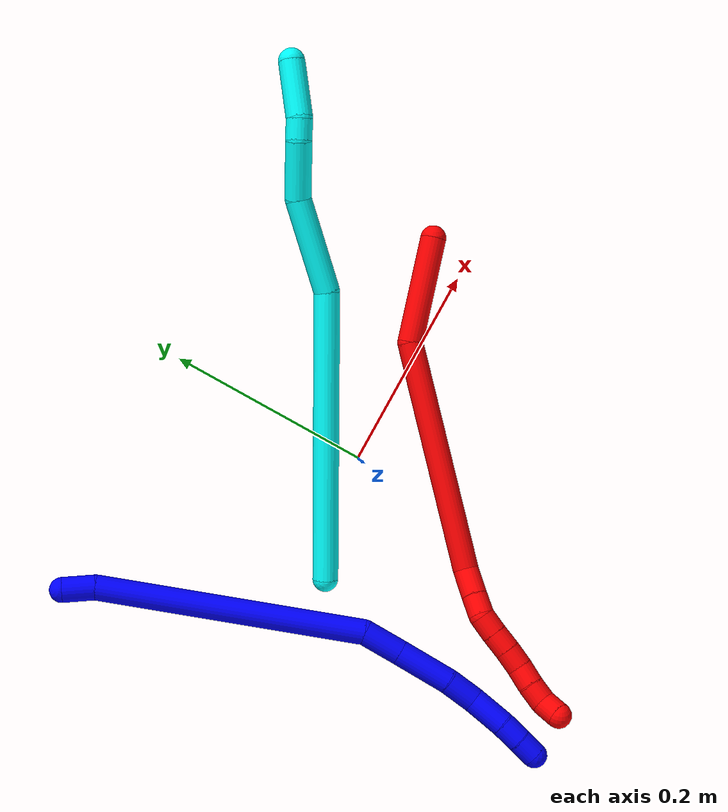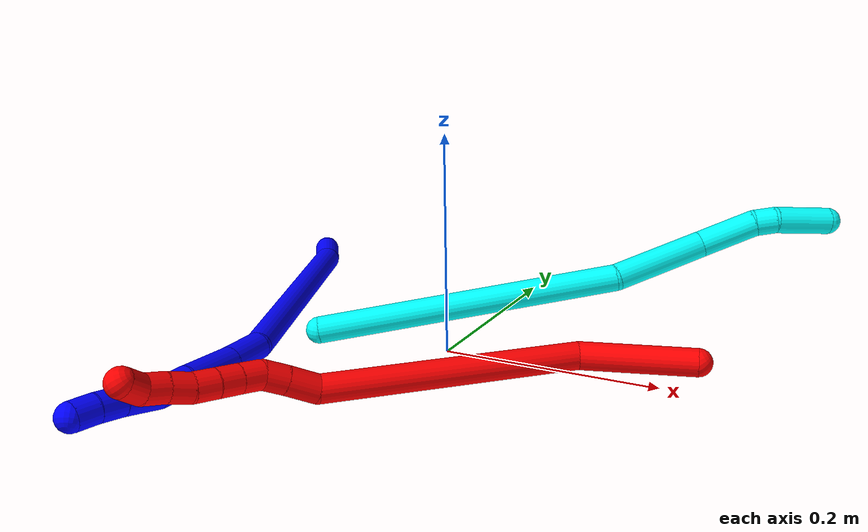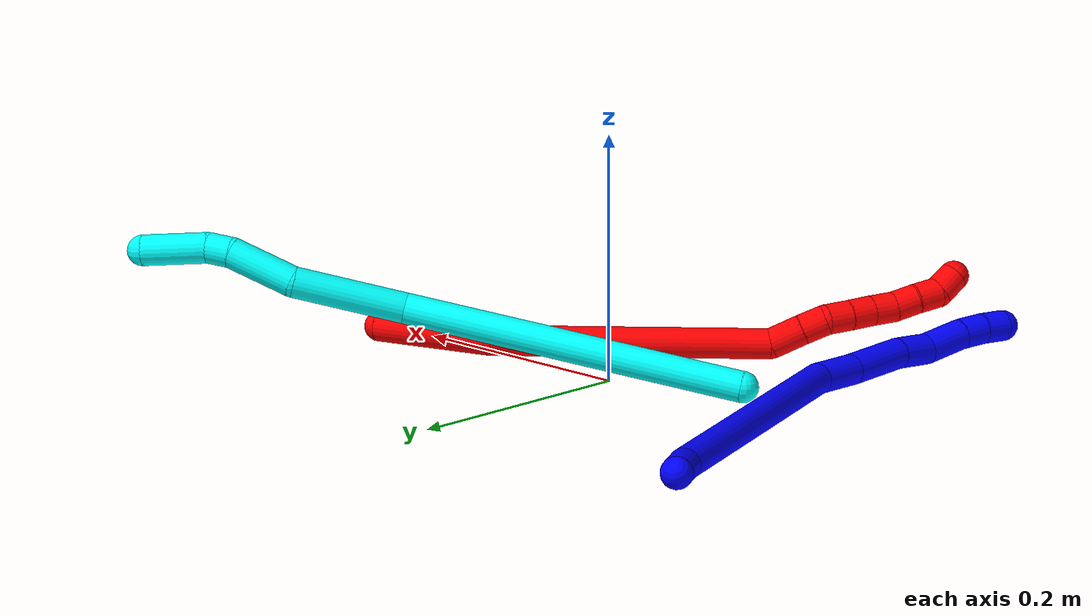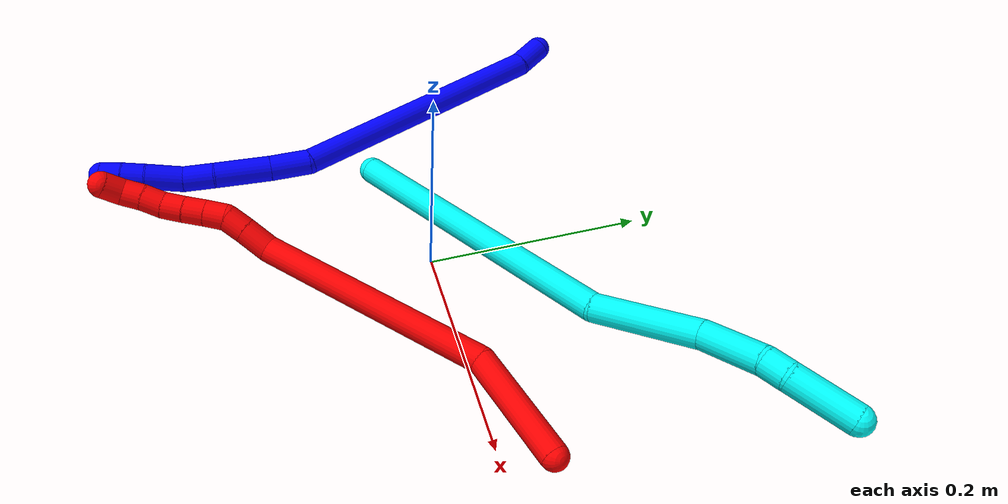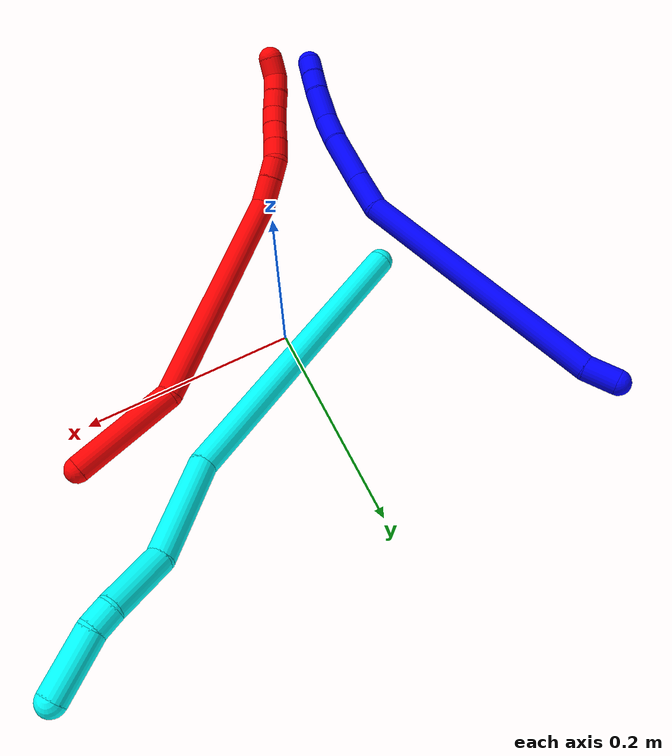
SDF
<sdf version="1.7">
 <world name="default">
  <plugin name="TubeGeneratorPlugin" filename="libtube_generator_plugin.so"/>
  <model name="photoneo_s_sensor">
   <static>1</static>
   <pose>0 0 2 1.57079 1.57079 3.14159</pose>
   <link name="link">
    <inertial><mass>0.1</mass></inertial>
    <sensor name="sensor" type="depth">
     <update_rate>30</update_rate>
     <camera>
      <horizontal_fov>1.22</horizontal_fov>
      <image><width>1920</width><height>1200</height><format>B8G8R8</format></image>
      <clip><near>0.1</near><far>4</far></clip>
      <depth_camera><output>points</output></depth_camera>
     </camera>
     <plugin name="camera_plugin" filename="libgazebo_ros_depth_camera.so">
      <baseline>0.2</baseline>
      <alwaysOn>1</alwaysOn>
      <updateRate>0.0</updateRate>
      <cameraName>camera_ir</cameraName>
      <imageTopicName>/camera/color/image_raw</imageTopicName>
      <cameraInfoTopicName>/camera/color/camera_info</cameraInfoTopicName>
      <depthImageTopicName>/camera/depth/image_raw</depthImageTopicName>
      <depthImageCameraInfoTopicName>/camera/depth/camera_info</depthImageCameraInfoTopicName>
      <pointCloudTopicName>/camera/depth/points</pointCloudTopicName>
      <frameName>fr_optical</frameName>
      <pointCloudCutoff>0.1</pointCloudCutoff>
      <pointCloudCutoffMax>2.0</pointCloudCutoffMax>
      <distortionK1>0</distortionK1>
      <distortionK2>0</distortionK2>
      <distortionK3>0</distortionK3>
      <distortionT1>0</distortionT1>
      <distortionT2>0</distortionT2>
      <CxPrime>0</CxPrime>
      <Cx>0</Cx>
      <Cy>0</Cy>
      <focalLength>0</focalLength>
      <hackBaseline>0</hackBaseline>
     </plugin>
    </sensor>
   </link>
  </model>
  <gravity>0 0 -9.8</gravity>
  <magnetic_field>6e-06 2.3e-05 -4.2e-05</magnetic_field>
  <atmosphere type="adiabatic"/>
  <physics name="default_physics" default="0" type="ode">
   <max_step_size>0.003</max_step_size>
   <real_time_factor>1</real_time_factor>
   <real_time_update_rate>1000</real_time_update_rate>
   <max_contacts>10000</max_contacts>
   <ode>
    <solver>
     <type>quick</type>
     <iters>100</iters>
     <sor>1.3</sor>
     <use_dynamic_moi_rescaling>0</use_dynamic_moi_rescaling>
    </solver>
    <constraints>
     <contact_max_correcting_vel>0</contact_max_correcting_vel>
     <contact_surface_layer>0.001</contact_surface_layer>
     <cfm>0</cfm>
     <erp>0.2</erp>
    </constraints>
   </ode>
  </physics>
  <scene><ambient>0.4 0.4 0.4 1</ambient><background>0.7 0.7 0.7 1</background><shadows>0</shadows></scene>
  <audio><device>default</device></audio>
  <spherical_coordinates>
   <surface_model>EARTH_WGS84</surface_model>
   <latitude_deg>0</latitude_deg>
   <longitude_deg>0</longitude_deg>
   <elevation>0</elevation>
   <heading_deg>0</heading_deg>
  </spherical_coordinates>
  <model name="bin">
   <static>1</static>
   <link name="bottom">
    <collision name="collision-bottom">
     <pose>0 0 -0.01 0 -0 0</pose>
     <geometry><box><size>0.8 0.6 0.02</size></box></geometry>
     <surface>
      <friction><ode><mu>100</mu><mu2>100</mu2></ode></friction>
      <contact><collide_bitmask>65535</collide_bitmask></contact>
     </surface>
    </collision>
   </link>
   <link name="west_wall">
    <collision name="collision-west_wall">
     <pose>-0.41 0 0.1 0 -0 0</pose>
     <geometry><box><size>0.02 0.6 0.2</size></box></geometry>
     <surface>
      <friction><ode><mu>100</mu><mu2>100</mu2></ode></friction>
      <contact><collide_bitmask>65535</collide_bitmask></contact>
     </surface>
    </collision>
   </link>
   <link name="east_wall">
    <collision name="collision-east_wall">
     <pose>0.41 0 0.1 0 -0 0</pose>
     <geometry><box><size>0.02 0.6 0.2</size></box></geometry>
     <surface>
      <friction><ode><mu>100</mu><mu2>100</mu2></ode></friction>
      <contact><collide_bitmask>65535</collide_bitmask></contact>
     </surface>
    </collision>
   </link>
   <link name="south_wall">
    <collision name="collision-south_wall">
     <pose>0 -0.31 0.1 0 -0 0</pose>
     <geometry><box><size>0.8 0.02 0.2</size></box></geometry>
     <surface>
      <friction><ode><mu>100</mu><mu2>100</mu2></ode></friction>
      <contact><collide_bitmask>65535</collide_bitmask></contact>
     </surface>
    </collision>
   </link>
   <link name="north_wall">
    <collision name="collision-north_wall">
     <pose>0 0.31 0.1 0 -0 0</pose>
     <geometry><box><size>0.8 0.02 0.2</size></box></geometry>
     <surface>
      <friction><ode><mu>100</mu><mu2>100</mu2></ode></friction>
      <contact><collide_bitmask>65535</collide_bitmask></contact>
     </surface>
    </collision>
   </link>
  </model>
  <model name="1">
   <static>0</static>
   <link name="1">
    <collision name="collision-cylinder-e_1_1_4">
     <pose>0.000669 -0.011266 0.011648 0.76873 0.041241 0.016683</pose>
     <geometry><cylinder><radius>0.0125</radius><length>0.032438</length></cylinder></geometry>
     <surface>
      <friction><ode><mu>1.16</mu><mu2>1.16</mu2><slip1>0</slip1><slip2>0</slip2></ode></friction>
      <contact><ode><kp>1e+06</kp><kd>1</kd><max_vel>0</max_vel><min_depth>0.001</min_depth></ode></contact>
     </surface>
    </collision>
    <visual name="visual-cylinder-e_1_1_4">
     <pose>0.000669 -0.011266 0.011648 0.76873 0.041241 0.016683</pose>
     <geometry><cylinder><radius>0.0125</radius><length>0.032438</length></cylinder></geometry>
     <material><ambient>0 0 1 1</ambient></material>
    </visual>
    <collision name="collision-cylinder-e_2_4_5">
     <pose>0.038558 -0.113461 0.111843 0.79867 0.285265 0.12106</pose>
     <geometry><cylinder><radius>0.0125</radius><length>0.264529</length></cylinder></geometry>
     <surface>
      <friction><ode><mu>1.16</mu><mu2>1.16</mu2><slip1>0</slip1><slip2>0</slip2></ode></friction>
      <contact><ode><kp>1e+06</kp><kd>1</kd><max_vel>0</max_vel><min_depth>0.001</min_depth></ode></contact>
     </surface>
    </collision>
    <visual name="visual-cylinder-e_2_4_5">
     <pose>0.038558 -0.113461 0.111843 0.79867 0.285265 0.12106</pose>
     <geometry><cylinder><radius>0.0125</radius><length>0.264529</length></cylinder></geometry>
     <material><ambient>0 0 1 1</ambient></material>
    </visual>
    <collision name="collision-cylinder-e_3_5_6">
     <pose>0.087437 -0.214639 0.212454 0.704225 0.634783 0.240233</pose>
     <geometry><cylinder><radius>0.0125</radius><length>0.039318</length></cylinder></geometry>
     <surface>
      <friction><ode><mu>1.16</mu><mu2>1.16</mu2><slip1>0</slip1><slip2>0</slip2></ode></friction>
      <contact><ode><kp>1e+06</kp><kd>1</kd><max_vel>0</max_vel><min_depth>0.001</min_depth></ode></contact>
     </surface>
    </collision>
    <visual name="visual-cylinder-e_3_5_6">
     <pose>0.087437 -0.214639 0.212454 0.704225 0.634783 0.240233</pose>
     <geometry><cylinder><radius>0.0125</radius><length>0.039318</length></cylinder></geometry>
     <material><ambient>0 0 1 1</ambient></material>
    </visual>
    <collision name="collision-cylinder-e_4_6_7">
     <pose>0.115733 -0.240117 0.240087 0.774355 0.652354 0.274127</pose>
     <geometry><cylinder><radius>0.0125</radius><length>0.054815</length></cylinder></geometry>
     <surface>
      <friction><ode><mu>1.16</mu><mu2>1.16</mu2><slip1>0</slip1><slip2>0</slip2></ode></friction>
      <contact><ode><kp>1e+06</kp><kd>1</kd><max_vel>0</max_vel><min_depth>0.001</min_depth></ode></contact>
     </surface>
    </collision>
    <visual name="visual-cylinder-e_4_6_7">
     <pose>0.115733 -0.240117 0.240087 0.774355 0.652354 0.274127</pose>
     <geometry><cylinder><radius>0.0125</radius><length>0.054815</length></cylinder></geometry>
     <material><ambient>0 0 1 1</ambient></material>
    </visual>
    <collision name="collision-cylinder-e_5_7_8">
     <pose>0.142489 -0.261797 0.26489 0.609808 0.731889 0.240043</pose>
     <geometry><cylinder><radius>0.0125</radius><length>0.03028</length></cylinder></geometry>
     <surface>
      <friction><ode><mu>1.16</mu><mu2>1.16</mu2><slip1>0</slip1><slip2>0</slip2></ode></friction>
      <contact><ode><kp>1e+06</kp><kd>1</kd><max_vel>0</max_vel><min_depth>0.001</min_depth></ode></contact>
     </surface>
    </collision>
    <visual name="visual-cylinder-e_5_7_8">
     <pose>0.142489 -0.261797 0.26489 0.609808 0.731889 0.240043</pose>
     <geometry><cylinder><radius>0.0125</radius><length>0.03028</length></cylinder></geometry>
     <material><ambient>0 0 1 1</ambient></material>
    </visual>
    <collision name="collision-cylinder-e_6_8_9">
     <pose>0.166015 -0.278048 0.281718 0.911488 0.824445 0.422281</pose>
     <geometry><cylinder><radius>0.0125</radius><length>0.036527</length></cylinder></geometry>
     <surface>
      <friction><ode><mu>1.16</mu><mu2>1.16</mu2><slip1>0</slip1><slip2>0</slip2></ode></friction>
      <contact><ode><kp>1e+06</kp><kd>1</kd><max_vel>0</max_vel><min_depth>0.001</min_depth></ode></contact>
     </surface>
    </collision>
    <visual name="visual-cylinder-e_6_8_9">
     <pose>0.166015 -0.278048 0.281718 0.911488 0.824445 0.422281</pose>
     <geometry><cylinder><radius>0.0125</radius><length>0.036527</length></cylinder></geometry>
     <material><ambient>0 0 1 1</ambient></material>
    </visual>
    <collision name="collision-cylinder-e_7_9_10">
     <pose>0.187804 -0.292499 0.294351 0.745382 0.885248 0.366467</pose>
     <geometry><cylinder><radius>0.0125</radius><length>0.021653</length></cylinder></geometry>
     <surface>
      <friction><ode><mu>1.16</mu><mu2>1.16</mu2><slip1>0</slip1><slip2>0</slip2></ode></friction>
      <contact><ode><kp>1e+06</kp><kd>1</kd><max_vel>0</max_vel><min_depth>0.001</min_depth></ode></contact>
     </surface>
    </collision>
    <visual name="visual-cylinder-e_7_9_10">
     <pose>0.187804 -0.292499 0.294351 0.745382 0.885248 0.366467</pose>
     <geometry><cylinder><radius>0.0125</radius><length>0.021653</length></cylinder></geometry>
     <material><ambient>0 0 1 1</ambient></material>
    </visual>
    <collision name="collision-cylinder-e_8_10_2">
     <pose>0.204084 -0.300819 0.304732 0.601983 0.88351 0.291532</pose>
     <geometry><cylinder><radius>0.0125</radius><length>0.020439</length></cylinder></geometry>
     <surface>
      <friction><ode><mu>1.16</mu><mu2>1.16</mu2><slip1>0</slip1><slip2>0</slip2></ode></friction>
      <contact><ode><kp>1e+06</kp><kd>1</kd><max_vel>0</max_vel><min_depth>0.001</min_depth></ode></contact>
     </surface>
    </collision>
    <visual name="visual-cylinder-e_8_10_2">
     <pose>0.204084 -0.300819 0.304732 0.601983 0.88351 0.291532</pose>
     <geometry><cylinder><radius>0.0125</radius><length>0.020439</length></cylinder></geometry>
     <material><ambient>0 0 1 1</ambient></material>
    </visual>
    <collision name="collision-sphere-2">
     <pose>0.211983 -0.304491 0.310076 0 -0 0</pose>
     <geometry><sphere><radius>0.0125</radius></sphere></geometry>
     <surface>
      <friction><ode><mu>1.16</mu><mu2>1.16</mu2><slip1>0</slip1><slip2>0</slip2></ode></friction>
      <contact><ode><kp>1e+06</kp><kd>1</kd><max_vel>0</max_vel><min_depth>0.001</min_depth></ode></contact>
     </surface>
    </collision>
    <visual name="visual-sphere-2">
     <pose>0.211983 -0.304491 0.310076 0 -0 0</pose>
     <geometry><sphere><radius>0.0125</radius></sphere></geometry>
     <material><ambient>0 0 1 1</ambient></material>
    </visual>
    <collision name="collision-sphere-10">
     <pose>0.196185 -0.297148 0.299388 0 -0 0</pose>
     <geometry><sphere><radius>0.0125</radius></sphere></geometry>
     <surface>
      <friction><ode><mu>1.16</mu><mu2>1.16</mu2><slip1>0</slip1><slip2>0</slip2></ode></friction>
      <contact><ode><kp>1e+06</kp><kd>1</kd><max_vel>0</max_vel><min_depth>0.001</min_depth></ode></contact>
     </surface>
    </collision>
    <visual name="visual-sphere-10">
     <pose>0.196185 -0.297148 0.299388 0 -0 0</pose>
     <geometry><sphere><radius>0.0125</radius></sphere></geometry>
     <material><ambient>0 0 1 1</ambient></material>
    </visual>
    <collision name="collision-sphere-9">
     <pose>0.179424 -0.28785 0.289315 0 -0 0</pose>
     <geometry><sphere><radius>0.0125</radius></sphere></geometry>
     <surface>
      <friction><ode><mu>1.16</mu><mu2>1.16</mu2><slip1>0</slip1><slip2>0</slip2></ode></friction>
      <contact><ode><kp>1e+06</kp><kd>1</kd><max_vel>0</max_vel><min_depth>0.001</min_depth></ode></contact>
     </surface>
    </collision>
    <visual name="visual-sphere-9">
     <pose>0.179424 -0.28785 0.289315 0 -0 0</pose>
     <geometry><sphere><radius>0.0125</radius></sphere></geometry>
     <material><ambient>0 0 1 1</ambient></material>
    </visual>
    <collision name="collision-sphere-4">
     <pose>0.001337 -0.022533 0.023297 0 -0 0</pose>
     <geometry><sphere><radius>0.0125</radius></sphere></geometry>
     <surface>
      <friction><ode><mu>1.16</mu><mu2>1.16</mu2><slip1>0</slip1><slip2>0</slip2></ode></friction>
      <contact><ode><kp>1e+06</kp><kd>1</kd><max_vel>0</max_vel><min_depth>0.001</min_depth></ode></contact>
     </surface>
    </collision>
    <visual name="visual-sphere-4">
     <pose>0.001337 -0.022533 0.023297 0 -0 0</pose>
     <geometry><sphere><radius>0.0125</radius></sphere></geometry>
     <material><ambient>0 0 1 1</ambient></material>
    </visual>
    <collision name="collision-sphere-1">
     <geometry><sphere><radius>0.0125</radius></sphere></geometry>
     <surface>
      <friction><ode><mu>1.16</mu><mu2>1.16</mu2><slip1>0</slip1><slip2>0</slip2></ode></friction>
      <contact><ode><kp>1e+06</kp><kd>1</kd><max_vel>0</max_vel><min_depth>0.001</min_depth></ode></contact>
     </surface>
    </collision>
    <visual name="visual-sphere-1">
     <geometry><sphere><radius>0.0125</radius></sphere></geometry>
     <material><ambient>0 0 1 1</ambient></material>
    </visual>
    <collision name="collision-sphere-8">
     <pose>0.152606 -0.268247 0.274122 0 -0 0</pose>
     <geometry><sphere><radius>0.0125</radius></sphere></geometry>
     <surface>
      <friction><ode><mu>1.16</mu><mu2>1.16</mu2><slip1>0</slip1><slip2>0</slip2></ode></friction>
      <contact><ode><kp>1e+06</kp><kd>1</kd><max_vel>0</max_vel><min_depth>0.001</min_depth></ode></contact>
     </surface>
    </collision>
    <visual name="visual-sphere-8">
     <pose>0.152606 -0.268247 0.274122 0 -0 0</pose>
     <geometry><sphere><radius>0.0125</radius></sphere></geometry>
     <material><ambient>0 0 1 1</ambient></material>
    </visual>
    <collision name="collision-sphere-5">
     <pose>0.075779 -0.20439 0.20039 0 -0 0</pose>
     <geometry><sphere><radius>0.0125</radius></sphere></geometry>
     <surface>
      <friction><ode><mu>1.16</mu><mu2>1.16</mu2><slip1>0</slip1><slip2>0</slip2></ode></friction>
      <contact><ode><kp>1e+06</kp><kd>1</kd><max_vel>0</max_vel><min_depth>0.001</min_depth></ode></contact>
     </surface>
    </collision>
    <visual name="visual-sphere-5">
     <pose>0.075779 -0.20439 0.20039 0 -0 0</pose>
     <geometry><sphere><radius>0.0125</radius></sphere></geometry>
     <material><ambient>0 0 1 1</ambient></material>
    </visual>
    <collision name="collision-sphere-6">
     <pose>0.099095 -0.224887 0.224518 0 -0 0</pose>
     <geometry><sphere><radius>0.0125</radius></sphere></geometry>
     <surface>
      <friction><ode><mu>1.16</mu><mu2>1.16</mu2><slip1>0</slip1><slip2>0</slip2></ode></friction>
      <contact><ode><kp>1e+06</kp><kd>1</kd><max_vel>0</max_vel><min_depth>0.001</min_depth></ode></contact>
     </surface>
    </collision>
    <visual name="visual-sphere-6">
     <pose>0.099095 -0.224887 0.224518 0 -0 0</pose>
     <geometry><sphere><radius>0.0125</radius></sphere></geometry>
     <material><ambient>0 0 1 1</ambient></material>
    </visual>
    <collision name="collision-sphere-7">
     <pose>0.132371 -0.255346 0.255657 0 -0 0</pose>
     <geometry><sphere><radius>0.0125</radius></sphere></geometry>
     <surface>
      <friction><ode><mu>1.16</mu><mu2>1.16</mu2><slip1>0</slip1><slip2>0</slip2></ode></friction>
      <contact><ode><kp>1e+06</kp><kd>1</kd><max_vel>0</max_vel><min_depth>0.001</min_depth></ode></contact>
     </surface>
    </collision>
    <visual name="visual-sphere-7">
     <pose>0.132371 -0.255346 0.255657 0 -0 0</pose>
     <geometry><sphere><radius>0.0125</radius></sphere></geometry>
     <material><ambient>0 0 1 1</ambient></material>
    </visual>
    <inertial>
     <pose>0.077239 -0.165092 0.164781 0 -0 0</pose>
     <mass>0.5</mass>
     <inertia>
      <ixx>0.001713</ixx>
      <ixy>0</ixy>
      <ixz>0</ixz>
      <iyy>0.001309</iyy>
      <iyz>0</iyz>
      <izz>0.000653</izz>
     </inertia>
    </inertial>
   </link>
   <pose>-0.251005 0.189448 0.015066 -2.42946 -0.202497 -2.50816</pose>
  </model>
  <model name="2">
   <static>0</static>
   <link name="2">
    <collision name="collision-cylinder-e_1_1_4">
     <pose>0.000705 -0.029132 0.042932 0.596199 0.013578 0.004172</pose>
     <geometry><cylinder><radius>0.0125</radius><length>0.103775</length></cylinder></geometry>
     <surface>
      <friction><ode><mu>1.16</mu><mu2>1.16</mu2><slip1>0</slip1><slip2>0</slip2></ode></friction>
      <contact><ode><kp>1e+06</kp><kd>1</kd><max_vel>0</max_vel><min_depth>0.001</min_depth></ode></contact>
     </surface>
    </collision>
    <visual name="visual-cylinder-e_1_1_4">
     <pose>0.000705 -0.029132 0.042932 0.596199 0.013578 0.004172</pose>
     <geometry><cylinder><radius>0.0125</radius><length>0.103775</length></cylinder></geometry>
     <material><ambient>1 0 0 1</ambient></material>
    </visual>
    <collision name="collision-cylinder-e_2_4_5">
     <pose>-0.046712 -0.108783 0.175579 0.512845 -0.437202 -0.116362</pose>
     <geometry><cylinder><radius>0.0125</radius><length>0.227303</length></cylinder></geometry>
     <surface>
      <friction><ode><mu>1.16</mu><mu2>1.16</mu2><slip1>0</slip1><slip2>0</slip2></ode></friction>
      <contact><ode><kp>1e+06</kp><kd>1</kd><max_vel>0</max_vel><min_depth>0.001</min_depth></ode></contact>
     </surface>
    </collision>
    <visual name="visual-cylinder-e_2_4_5">
     <pose>-0.046712 -0.108783 0.175579 0.512845 -0.437202 -0.116362</pose>
     <geometry><cylinder><radius>0.0125</radius><length>0.227303</length></cylinder></geometry>
     <material><ambient>1 0 0 1</ambient></material>
    </visual>
    <collision name="collision-cylinder-e_3_5_6">
     <pose>-0.101717 -0.169651 0.27192 1.00136 -0.510668 -0.283745</pose>
     <geometry><cylinder><radius>0.0125</radius><length>0.02817</length></cylinder></geometry>
     <surface>
      <friction><ode><mu>1.16</mu><mu2>1.16</mu2><slip1>0</slip1><slip2>0</slip2></ode></friction>
      <contact><ode><kp>1e+06</kp><kd>1</kd><max_vel>0</max_vel><min_depth>0.001</min_depth></ode></contact>
     </surface>
    </collision>
    <visual name="visual-cylinder-e_3_5_6">
     <pose>-0.101717 -0.169651 0.27192 1.00136 -0.510668 -0.283745</pose>
     <geometry><cylinder><radius>0.0125</radius><length>0.02817</length></cylinder></geometry>
     <material><ambient>1 0 0 1</ambient></material>
    </visual>
    <collision name="collision-cylinder-e_4_6_7">
     <pose>-0.113865 -0.187257 0.283604 0.961969 -0.536782 -0.285105</pose>
     <geometry><cylinder><radius>0.0125</radius><length>0.020589</length></cylinder></geometry>
     <surface>
      <friction><ode><mu>1.16</mu><mu2>1.16</mu2><slip1>0</slip1><slip2>0</slip2></ode></friction>
      <contact><ode><kp>1e+06</kp><kd>1</kd><max_vel>0</max_vel><min_depth>0.001</min_depth></ode></contact>
     </surface>
    </collision>
    <visual name="visual-cylinder-e_4_6_7">
     <pose>-0.113865 -0.187257 0.283604 0.961969 -0.536782 -0.285105</pose>
     <geometry><cylinder><radius>0.0125</radius><length>0.020589</length></cylinder></geometry>
     <material><ambient>1 0 0 1</ambient></material>
    </visual>
    <collision name="collision-cylinder-e_5_7_8">
     <pose>-0.126541 -0.19813 0.294456 0.558122 -0.826403 -0.249951</pose>
     <geometry><cylinder><radius>0.0125</radius><length>0.020155</length></cylinder></geometry>
     <surface>
      <friction><ode><mu>1.16</mu><mu2>1.16</mu2><slip1>0</slip1><slip2>0</slip2></ode></friction>
      <contact><ode><kp>1e+06</kp><kd>1</kd><max_vel>0</max_vel><min_depth>0.001</min_depth></ode></contact>
     </surface>
    </collision>
    <visual name="visual-cylinder-e_5_7_8">
     <pose>-0.126541 -0.19813 0.294456 0.558122 -0.826403 -0.249951</pose>
     <geometry><cylinder><radius>0.0125</radius><length>0.020155</length></cylinder></geometry>
     <material><ambient>1 0 0 1</ambient></material>
    </visual>
    <collision name="collision-cylinder-e_6_8_9">
     <pose>-0.141616 -0.205168 0.30569 0.561319 -0.87273 -0.267264</pose>
     <geometry><cylinder><radius>0.0125</radius><length>0.020005</length></cylinder></geometry>
     <surface>
      <friction><ode><mu>1.16</mu><mu2>1.16</mu2><slip1>0</slip1><slip2>0</slip2></ode></friction>
      <contact><ode><kp>1e+06</kp><kd>1</kd><max_vel>0</max_vel><min_depth>0.001</min_depth></ode></contact>
     </surface>
    </collision>
    <visual name="visual-cylinder-e_6_8_9">
     <pose>-0.141616 -0.205168 0.30569 0.561319 -0.87273 -0.267264</pose>
     <geometry><cylinder><radius>0.0125</radius><length>0.020005</length></cylinder></geometry>
     <material><ambient>1 0 0 1</ambient></material>
    </visual>
    <collision name="collision-cylinder-e_7_9_10">
     <pose>-0.156605 -0.212107 0.316962 0.542735 -0.822014 -0.241344</pose>
     <geometry><cylinder><radius>0.0125</radius><length>0.020002</length></cylinder></geometry>
     <surface>
      <friction><ode><mu>1.16</mu><mu2>1.16</mu2><slip1>0</slip1><slip2>0</slip2></ode></friction>
      <contact><ode><kp>1e+06</kp><kd>1</kd><max_vel>0</max_vel><min_depth>0.001</min_depth></ode></contact>
     </surface>
    </collision>
    <visual name="visual-cylinder-e_7_9_10">
     <pose>-0.156605 -0.212107 0.316962 0.542735 -0.822014 -0.241344</pose>
     <geometry><cylinder><radius>0.0125</radius><length>0.020002</length></cylinder></geometry>
     <material><ambient>1 0 0 1</ambient></material>
    </visual>
    <collision name="collision-cylinder-e_8_10_11">
     <pose>-0.170834 -0.22093 0.32771 0.823411 -0.761899 -0.346275</pose>
     <geometry><cylinder><radius>0.0125</radius><length>0.02</length></cylinder></geometry>
     <surface>
      <friction><ode><mu>1.16</mu><mu2>1.16</mu2><slip1>0</slip1><slip2>0</slip2></ode></friction>
      <contact><ode><kp>1e+06</kp><kd>1</kd><max_vel>0</max_vel><min_depth>0.001</min_depth></ode></contact>
     </surface>
    </collision>
    <visual name="visual-cylinder-e_8_10_11">
     <pose>-0.170834 -0.22093 0.32771 0.823411 -0.761899 -0.346275</pose>
     <geometry><cylinder><radius>0.0125</radius><length>0.02</length></cylinder></geometry>
     <material><ambient>1 0 0 1</ambient></material>
    </visual>
    <collision name="collision-cylinder-e_9_11_12">
     <pose>-0.185217 -0.230556 0.337668 0.708507 -0.844962 -0.329525</pose>
     <geometry><cylinder><radius>0.0125</radius><length>0.02</length></cylinder></geometry>
     <surface>
      <friction><ode><mu>1.16</mu><mu2>1.16</mu2><slip1>0</slip1><slip2>0</slip2></ode></friction>
      <contact><ode><kp>1e+06</kp><kd>1</kd><max_vel>0</max_vel><min_depth>0.001</min_depth></ode></contact>
     </surface>
    </collision>
    <visual name="visual-cylinder-e_9_11_12">
     <pose>-0.185217 -0.230556 0.337668 0.708507 -0.844962 -0.329525</pose>
     <geometry><cylinder><radius>0.0125</radius><length>0.02</length></cylinder></geometry>
     <material><ambient>1 0 0 1</ambient></material>
    </visual>
    <collision name="collision-cylinder-e_10_12_2">
     <pose>-0.200768 -0.240748 0.343311 1.46851 -0.939307 -0.859142</pose>
     <geometry><cylinder><radius>0.0125</radius><length>0.02</length></cylinder></geometry>
     <surface>
      <friction><ode><mu>1.16</mu><mu2>1.16</mu2><slip1>0</slip1><slip2>0</slip2></ode></friction>
      <contact><ode><kp>1e+06</kp><kd>1</kd><max_vel>0</max_vel><min_depth>0.001</min_depth></ode></contact>
     </surface>
    </collision>
    <visual name="visual-cylinder-e_10_12_2">
     <pose>-0.200768 -0.240748 0.343311 1.46851 -0.939307 -0.859142</pose>
     <geometry><cylinder><radius>0.0125</radius><length>0.02</length></cylinder></geometry>
     <material><ambient>1 0 0 1</ambient></material>
    </visual>
    <collision name="collision-sphere-2">
     <pose>-0.208839 -0.246621 0.343914 0 -0 0</pose>
     <geometry><sphere><radius>0.0125</radius></sphere></geometry>
     <surface>
      <friction><ode><mu>1.16</mu><mu2>1.16</mu2><slip1>0</slip1><slip2>0</slip2></ode></friction>
      <contact><ode><kp>1e+06</kp><kd>1</kd><max_vel>0</max_vel><min_depth>0.001</min_depth></ode></contact>
     </surface>
    </collision>
    <visual name="visual-sphere-2">
     <pose>-0.208839 -0.246621 0.343914 0 -0 0</pose>
     <geometry><sphere><radius>0.0125</radius></sphere></geometry>
     <material><ambient>1 0 0 1</ambient></material>
    </visual>
    <collision name="collision-sphere-12">
     <pose>-0.192696 -0.234875 0.342709 0 -0 0</pose>
     <geometry><sphere><radius>0.0125</radius></sphere></geometry>
     <surface>
      <friction><ode><mu>1.16</mu><mu2>1.16</mu2><slip1>0</slip1><slip2>0</slip2></ode></friction>
      <contact><ode><kp>1e+06</kp><kd>1</kd><max_vel>0</max_vel><min_depth>0.001</min_depth></ode></contact>
     </surface>
    </collision>
    <visual name="visual-sphere-12">
     <pose>-0.192696 -0.234875 0.342709 0 -0 0</pose>
     <geometry><sphere><radius>0.0125</radius></sphere></geometry>
     <material><ambient>1 0 0 1</ambient></material>
    </visual>
    <collision name="collision-sphere-11">
     <pose>-0.177737 -0.226237 0.332628 0 -0 0</pose>
     <geometry><sphere><radius>0.0125</radius></sphere></geometry>
     <surface>
      <friction><ode><mu>1.16</mu><mu2>1.16</mu2><slip1>0</slip1><slip2>0</slip2></ode></friction>
      <contact><ode><kp>1e+06</kp><kd>1</kd><max_vel>0</max_vel><min_depth>0.001</min_depth></ode></contact>
     </surface>
    </collision>
    <visual name="visual-sphere-11">
     <pose>-0.177737 -0.226237 0.332628 0 -0 0</pose>
     <geometry><sphere><radius>0.0125</radius></sphere></geometry>
     <material><ambient>1 0 0 1</ambient></material>
    </visual>
    <collision name="collision-sphere-10">
     <pose>-0.163931 -0.215623 0.322792 0 -0 0</pose>
     <geometry><sphere><radius>0.0125</radius></sphere></geometry>
     <surface>
      <friction><ode><mu>1.16</mu><mu2>1.16</mu2><slip1>0</slip1><slip2>0</slip2></ode></friction>
      <contact><ode><kp>1e+06</kp><kd>1</kd><max_vel>0</max_vel><min_depth>0.001</min_depth></ode></contact>
     </surface>
    </collision>
    <visual name="visual-sphere-10">
     <pose>-0.163931 -0.215623 0.322792 0 -0 0</pose>
     <geometry><sphere><radius>0.0125</radius></sphere></geometry>
     <material><ambient>1 0 0 1</ambient></material>
    </visual>
    <collision name="collision-sphere-9">
     <pose>-0.149279 -0.208591 0.311132 0 -0 0</pose>
     <geometry><sphere><radius>0.0125</radius></sphere></geometry>
     <surface>
      <friction><ode><mu>1.16</mu><mu2>1.16</mu2><slip1>0</slip1><slip2>0</slip2></ode></friction>
      <contact><ode><kp>1e+06</kp><kd>1</kd><max_vel>0</max_vel><min_depth>0.001</min_depth></ode></contact>
     </surface>
    </collision>
    <visual name="visual-sphere-9">
     <pose>-0.149279 -0.208591 0.311132 0 -0 0</pose>
     <geometry><sphere><radius>0.0125</radius></sphere></geometry>
     <material><ambient>1 0 0 1</ambient></material>
    </visual>
    <collision name="collision-sphere-4">
     <pose>0.001409 -0.058264 0.085864 0 -0 0</pose>
     <geometry><sphere><radius>0.0125</radius></sphere></geometry>
     <surface>
      <friction><ode><mu>1.16</mu><mu2>1.16</mu2><slip1>0</slip1><slip2>0</slip2></ode></friction>
      <contact><ode><kp>1e+06</kp><kd>1</kd><max_vel>0</max_vel><min_depth>0.001</min_depth></ode></contact>
     </surface>
    </collision>
    <visual name="visual-sphere-4">
     <pose>0.001409 -0.058264 0.085864 0 -0 0</pose>
     <geometry><sphere><radius>0.0125</radius></sphere></geometry>
     <material><ambient>1 0 0 1</ambient></material>
    </visual>
    <collision name="collision-sphere-1">
     <geometry><sphere><radius>0.0125</radius></sphere></geometry>
     <surface>
      <friction><ode><mu>1.16</mu><mu2>1.16</mu2><slip1>0</slip1><slip2>0</slip2></ode></friction>
      <contact><ode><kp>1e+06</kp><kd>1</kd><max_vel>0</max_vel><min_depth>0.001</min_depth></ode></contact>
     </surface>
    </collision>
    <visual name="visual-sphere-1">
     <geometry><sphere><radius>0.0125</radius></sphere></geometry>
     <material><ambient>1 0 0 1</ambient></material>
    </visual>
    <collision name="collision-sphere-8">
     <pose>-0.133953 -0.201746 0.300247 0 -0 0</pose>
     <geometry><sphere><radius>0.0125</radius></sphere></geometry>
     <surface>
      <friction><ode><mu>1.16</mu><mu2>1.16</mu2><slip1>0</slip1><slip2>0</slip2></ode></friction>
      <contact><ode><kp>1e+06</kp><kd>1</kd><max_vel>0</max_vel><min_depth>0.001</min_depth></ode></contact>
     </surface>
    </collision>
    <visual name="visual-sphere-8">
     <pose>-0.133953 -0.201746 0.300247 0 -0 0</pose>
     <geometry><sphere><radius>0.0125</radius></sphere></geometry>
     <material><ambient>1 0 0 1</ambient></material>
    </visual>
    <collision name="collision-sphere-5">
     <pose>-0.094832 -0.159302 0.265295 0 -0 0</pose>
     <geometry><sphere><radius>0.0125</radius></sphere></geometry>
     <surface>
      <friction><ode><mu>1.16</mu><mu2>1.16</mu2><slip1>0</slip1><slip2>0</slip2></ode></friction>
      <contact><ode><kp>1e+06</kp><kd>1</kd><max_vel>0</max_vel><min_depth>0.001</min_depth></ode></contact>
     </surface>
    </collision>
    <visual name="visual-sphere-5">
     <pose>-0.094832 -0.159302 0.265295 0 -0 0</pose>
     <geometry><sphere><radius>0.0125</radius></sphere></geometry>
     <material><ambient>1 0 0 1</ambient></material>
    </visual>
    <collision name="collision-sphere-6">
     <pose>-0.108601 -0.18 0.278545 0 -0 0</pose>
     <geometry><sphere><radius>0.0125</radius></sphere></geometry>
     <surface>
      <friction><ode><mu>1.16</mu><mu2>1.16</mu2><slip1>0</slip1><slip2>0</slip2></ode></friction>
      <contact><ode><kp>1e+06</kp><kd>1</kd><max_vel>0</max_vel><min_depth>0.001</min_depth></ode></contact>
     </surface>
    </collision>
    <visual name="visual-sphere-6">
     <pose>-0.108601 -0.18 0.278545 0 -0 0</pose>
     <geometry><sphere><radius>0.0125</radius></sphere></geometry>
     <material><ambient>1 0 0 1</ambient></material>
    </visual>
    <collision name="collision-sphere-7">
     <pose>-0.11913 -0.194514 0.288664 0 -0 0</pose>
     <geometry><sphere><radius>0.0125</radius></sphere></geometry>
     <surface>
      <friction><ode><mu>1.16</mu><mu2>1.16</mu2><slip1>0</slip1><slip2>0</slip2></ode></friction>
      <contact><ode><kp>1e+06</kp><kd>1</kd><max_vel>0</max_vel><min_depth>0.001</min_depth></ode></contact>
     </surface>
    </collision>
    <visual name="visual-sphere-7">
     <pose>-0.11913 -0.194514 0.288664 0 -0 0</pose>
     <geometry><sphere><radius>0.0125</radius></sphere></geometry>
     <material><ambient>1 0 0 1</ambient></material>
    </visual>
    <inertial>
     <pose>-0.070814 -0.125139 0.192856 0 -0 0</pose>
     <mass>0.5</mass>
     <inertia>
      <ixx>0.000872</ixx>
      <ixy>0</ixy>
      <ixz>0</ixz>
      <iyy>0.000843</iyy>
      <iyz>0</iyz>
      <izz>0.000953</izz>
     </inertia>
    </inertial>
   </link>
   <pose>0.222284 0.040331 0.012331 -2.16004 0.148337 1.87478</pose>
  </model>
  <model name="3">
   <static>0</static>
   <link name="3">
    <collision name="collision-cylinder-e_1_1_4">
     <pose>0.120875 0.066017 0.023787 -1.22496 1.04482 -0.768829</pose>
     <geometry><cylinder><radius>0.0125</radius><length>0.279534</length></cylinder></geometry>
     <surface>
      <friction><ode><mu>1.16</mu><mu2>1.16</mu2><slip1>0</slip1><slip2>0</slip2></ode></friction>
      <contact><ode><kp>1e+06</kp><kd>1</kd><max_vel>0</max_vel><min_depth>0.001</min_depth></ode></contact>
     </surface>
    </collision>
    <visual name="visual-cylinder-e_1_1_4">
     <pose>0.120875 0.066017 0.023787 -1.22496 1.04482 -0.768829</pose>
     <geometry><cylinder><radius>0.0125</radius><length>0.279534</length></cylinder></geometry>
     <material><ambient>0.003922 1 0.996078 1</ambient></material>
    </visual>
    <collision name="collision-cylinder-e_2_4_5">
     <pose>0.272238 0.164575 0.058182 -1.2557 0.727683 -0.539315</pose>
     <geometry><cylinder><radius>0.0125</radius><length>0.091672</length></cylinder></geometry>
     <surface>
      <friction><ode><mu>1.16</mu><mu2>1.16</mu2><slip1>0</slip1><slip2>0</slip2></ode></friction>
      <contact><ode><kp>1e+06</kp><kd>1</kd><max_vel>0</max_vel><min_depth>0.001</min_depth></ode></contact>
     </surface>
    </collision>
    <visual name="visual-cylinder-e_2_4_5">
     <pose>0.272238 0.164575 0.058182 -1.2557 0.727683 -0.539315</pose>
     <geometry><cylinder><radius>0.0125</radius><length>0.091672</length></cylinder></geometry>
     <material><ambient>0.003922 1 0.996078 1</ambient></material>
    </visual>
    <collision name="collision-cylinder-e_3_5_6">
     <pose>0.325018 0.209448 0.079216 -0.868846 0.943882 -0.465078</pose>
     <geometry><cylinder><radius>0.0125</radius><length>0.055054</length></cylinder></geometry>
     <surface>
      <friction><ode><mu>1.16</mu><mu2>1.16</mu2><slip1>0</slip1><slip2>0</slip2></ode></friction>
      <contact><ode><kp>1e+06</kp><kd>1</kd><max_vel>0</max_vel><min_depth>0.001</min_depth></ode></contact>
     </surface>
    </collision>
    <visual name="visual-cylinder-e_3_5_6">
     <pose>0.325018 0.209448 0.079216 -0.868846 0.943882 -0.465078</pose>
     <geometry><cylinder><radius>0.0125</radius><length>0.055054</length></cylinder></geometry>
     <material><ambient>0.003922 1 0.996078 1</ambient></material>
    </visual>
    <collision name="collision-cylinder-e_4_6_7">
     <pose>0.356165 0.226278 0.0911 -1.25777 1.08027 -0.822575</pose>
     <geometry><cylinder><radius>0.0125</radius><length>0.020076</length></cylinder></geometry>
     <surface>
      <friction><ode><mu>1.16</mu><mu2>1.16</mu2><slip1>0</slip1><slip2>0</slip2></ode></friction>
      <contact><ode><kp>1e+06</kp><kd>1</kd><max_vel>0</max_vel><min_depth>0.001</min_depth></ode></contact>
     </surface>
    </collision>
    <visual name="visual-cylinder-e_4_6_7">
     <pose>0.356165 0.226278 0.0911 -1.25777 1.08027 -0.822575</pose>
     <geometry><cylinder><radius>0.0125</radius><length>0.020076</length></cylinder></geometry>
     <material><ambient>0.003922 1 0.996078 1</ambient></material>
    </visual>
    <collision name="collision-cylinder-e_5_7_2">
     <pose>0.386821 0.2463 0.090644 -1.69333 0.948474 -1.05177</pose>
     <geometry><cylinder><radius>0.0125</radius><length>0.053663</length></cylinder></geometry>
     <surface>
      <friction><ode><mu>1.16</mu><mu2>1.16</mu2><slip1>0</slip1><slip2>0</slip2></ode></friction>
      <contact><ode><kp>1e+06</kp><kd>1</kd><max_vel>0</max_vel><min_depth>0.001</min_depth></ode></contact>
     </surface>
    </collision>
    <visual name="visual-cylinder-e_5_7_2">
     <pose>0.386821 0.2463 0.090644 -1.69333 0.948474 -1.05177</pose>
     <geometry><cylinder><radius>0.0125</radius><length>0.053663</length></cylinder></geometry>
     <material><ambient>0.003922 1 0.996078 1</ambient></material>
    </visual>
    <collision name="collision-sphere-2">
     <pose>0.408622 0.261824 0.088732 0 -0 0</pose>
     <geometry><sphere><radius>0.0125</radius></sphere></geometry>
     <surface>
      <friction><ode><mu>1.16</mu><mu2>1.16</mu2><slip1>0</slip1><slip2>0</slip2></ode></friction>
      <contact><ode><kp>1e+06</kp><kd>1</kd><max_vel>0</max_vel><min_depth>0.001</min_depth></ode></contact>
     </surface>
    </collision>
    <visual name="visual-sphere-2">
     <pose>0.408622 0.261824 0.088732 0 -0 0</pose>
     <geometry><sphere><radius>0.0125</radius></sphere></geometry>
     <material><ambient>0.003922 1 0.996078 1</ambient></material>
    </visual>
    <collision name="collision-sphere-7">
     <pose>0.365019 0.230777 0.092556 0 -0 0</pose>
     <geometry><sphere><radius>0.0125</radius></sphere></geometry>
     <surface>
      <friction><ode><mu>1.16</mu><mu2>1.16</mu2><slip1>0</slip1><slip2>0</slip2></ode></friction>
      <contact><ode><kp>1e+06</kp><kd>1</kd><max_vel>0</max_vel><min_depth>0.001</min_depth></ode></contact>
     </surface>
    </collision>
    <visual name="visual-sphere-7">
     <pose>0.365019 0.230777 0.092556 0 -0 0</pose>
     <geometry><sphere><radius>0.0125</radius></sphere></geometry>
     <material><ambient>0.003922 1 0.996078 1</ambient></material>
    </visual>
    <collision name="collision-sphere-6">
     <pose>0.347311 0.221779 0.089644 0 -0 0</pose>
     <geometry><sphere><radius>0.0125</radius></sphere></geometry>
     <surface>
      <friction><ode><mu>1.16</mu><mu2>1.16</mu2><slip1>0</slip1><slip2>0</slip2></ode></friction>
      <contact><ode><kp>1e+06</kp><kd>1</kd><max_vel>0</max_vel><min_depth>0.001</min_depth></ode></contact>
     </surface>
    </collision>
    <visual name="visual-sphere-6">
     <pose>0.347311 0.221779 0.089644 0 -0 0</pose>
     <geometry><sphere><radius>0.0125</radius></sphere></geometry>
     <material><ambient>0.003922 1 0.996078 1</ambient></material>
    </visual>
    <collision name="collision-sphere-5">
     <pose>0.302726 0.197117 0.068789 0 -0 0</pose>
     <geometry><sphere><radius>0.0125</radius></sphere></geometry>
     <surface>
      <friction><ode><mu>1.16</mu><mu2>1.16</mu2><slip1>0</slip1><slip2>0</slip2></ode></friction>
      <contact><ode><kp>1e+06</kp><kd>1</kd><max_vel>0</max_vel><min_depth>0.001</min_depth></ode></contact>
     </surface>
    </collision>
    <visual name="visual-sphere-5">
     <pose>0.302726 0.197117 0.068789 0 -0 0</pose>
     <geometry><sphere><radius>0.0125</radius></sphere></geometry>
     <material><ambient>0.003922 1 0.996078 1</ambient></material>
    </visual>
    <collision name="collision-sphere-1">
     <geometry><sphere><radius>0.0125</radius></sphere></geometry>
     <surface>
      <friction><ode><mu>1.16</mu><mu2>1.16</mu2><slip1>0</slip1><slip2>0</slip2></ode></friction>
      <contact><ode><kp>1e+06</kp><kd>1</kd><max_vel>0</max_vel><min_depth>0.001</min_depth></ode></contact>
     </surface>
    </collision>
    <visual name="visual-sphere-1">
     <geometry><sphere><radius>0.0125</radius></sphere></geometry>
     <material><ambient>0.003922 1 0.996078 1</ambient></material>
    </visual>
    <collision name="collision-sphere-4">
     <pose>0.24175 0.132034 0.047574 0 -0 0</pose>
     <geometry><sphere><radius>0.0125</radius></sphere></geometry>
     <surface>
      <friction><ode><mu>1.16</mu><mu2>1.16</mu2><slip1>0</slip1><slip2>0</slip2></ode></friction>
      <contact><ode><kp>1e+06</kp><kd>1</kd><max_vel>0</max_vel><min_depth>0.001</min_depth></ode></contact>
     </surface>
    </collision>
    <visual name="visual-sphere-4">
     <pose>0.24175 0.132034 0.047574 0 -0 0</pose>
     <geometry><sphere><radius>0.0125</radius></sphere></geometry>
     <material><ambient>0.003922 1 0.996078 1</ambient></material>
    </visual>
    <inertial>
     <pose>0.209095 0.125664 0.046075 0 -0 0</pose>
     <mass>0.5</mass>
     <inertia>
      <ixx>7.2e-05</ixx>
      <ixy>0</ixy>
      <ixz>0</ixz>
      <iyy>0.00089</iyy>
      <iyz>0</iyz>
      <izz>-0.002578</izz>
     </inertia>
    </inertial>
   </link>
   <pose>-0.11794 -0.02872 0.01182 0.061141 0.043634 0.017805</pose>
  </model>
 </world>
</sdf>
